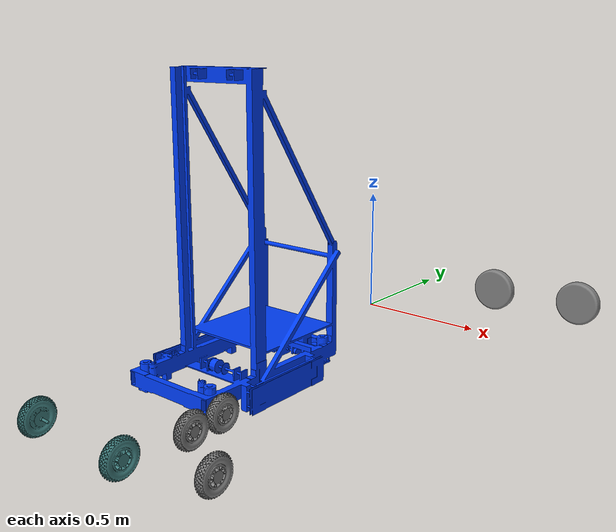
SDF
<?xml version="1.0" encoding="utf-8"?>
<sdf version="1.5">
  <model name="Tank8Wedge">
    <pose>0 0 -0.0706249999999999 0 0 0</pose>
    <plugin name="clock" filename="libgz_clock.so">
      <topic>/gazebo/frc/time</topic>
    </plugin>
    <link name="Chassis">
      <gravity>1</gravity>
      <self_collide>0</self_collide>
      <pose>0.357723289284675 0.310439789168364 0.0464936784165502 1.5707963267949 0 1.5707963267949</pose>
      <must_be_base_link>1</must_be_base_link>
      <velocity_decay>
        <linear>0</linear>
        <angular>0</angular>
      </velocity_decay>
      <inertial>
        <mass>23.7410269468256</mass>
        <pose>0 0 0 0 0 0</pose>
        <inertia>
          <ixx>2.05173000185389</ixx>
          <ixy>0.00132717564561912</ixy>
          <ixz>0.00571823264592034</ixz>
          <iyy>3.41527524343051</iyy>
          <iyz>0.0352806104243629</iyz>
          <izz>1.41790595953347</izz>
        </inertia>
      </inertial>
      <collision name="Chassis_collision">
        <pose>-0.642853807276795 -0.680583417459274 -0.958177276047857 0 0 0</pose>
        <geometry>
          <mesh>
            <scale>1 1 1</scale>
            <uri>model://Tank8Wedge/meshes/Chassis_col.STL</uri>
          </mesh>
        </geometry>
        <surface>
          <contact>
            <ode />
          </contact>
          <friction>
            <ode>
              <mu>0</mu>
              <mu2>0</mu2>
            </ode>
          </friction>
        </surface>
      </collision>
      <visual name="Chassis_visual">
        <pose>-0.642853807276795 -0.680583417459274 -0.958177276047857 0 0 0</pose>
        <material>
          <ambient>0 0.250980392156863 1 1</ambient>
          <diffuse>0 0.250980392156863 1 1</diffuse>
        </material>
        <geometry>
          <mesh>
            <scale>1 1 1</scale>
            <uri>model://Tank8Wedge/meshes/Chassis.STL</uri>
          </mesh>
        </geometry>
      </visual>
    </link>
    <link name="L1Wheel">
      <gravity>1</gravity>
      <self_collide>0</self_collide>
      <pose>0.0634370791995422 -0.0420967338462812 0.0517879126637832 1.5707963267949 0 1.5707963267949</pose>
      <must_be_base_link>0</must_be_base_link>
      <velocity_decay>
        <linear>0</linear>
        <angular>0</angular>
      </velocity_decay>
      <inertial>
        <mass>1.3226410844282</mass>
        <pose>0 0 0 0 0 0</pose>
        <inertia>
          <ixx>0.00613216984938857</ixx>
          <ixy>2.27955363979011E-19</ixy>
          <ixz>3.68883731262093E-19</ixz>
          <iyy>0.0032875121323083</iyy>
          <iyz>4.36246814135751E-20</iyz>
          <izz>0.0032875121323083</izz>
        </inertia>
      </inertial>
      <collision name="L1Wheel_collision">
        <pose>-0.29031728426215 -0.685877651706507 -0.663891065962724 0 0 0</pose>
        <geometry>
          <mesh>
            <scale>1 1 1</scale>
            <uri>model://Tank8Wedge/meshes/L1Wheel_col.STL</uri>
          </mesh>
        </geometry>
        <surface>
          <contact>
            <ode />
          </contact>
          <friction>
            <ode>
              <mu>1</mu>
              <mu2>1</mu2>
            </ode>
          </friction>
        </surface>
      </collision>
      <visual name="L1Wheel_visual">
        <pose>-0.29031728426215 -0.685877651706507 -0.663891065962724 0 0 0</pose>
        <material>
          <ambient>0.250980392156863 0.501960784313725 0.501960784313725 1</ambient>
          <diffuse>0.250980392156863 0.501960784313725 0.501960784313725 1</diffuse>
        </material>
        <geometry>
          <mesh>
            <scale>1 1 1</scale>
            <uri>model://Tank8Wedge/meshes/L1Wheel.STL</uri>
          </mesh>
        </geometry>
      </visual>
    </link>
    <joint name="Chassis-L1Wheel" type="revolute">
      <parent>Chassis</parent>
      <child>L1Wheel</child>
      <pose>0.00952500000000001 0 0 0 0 3.14159265358979</pose>
      <axis>
        <xyz>1 1.22460635382238E-16 0</xyz>
        <dynamics>
          <damping>1</damping>
          <friction>1</friction>
        </dynamics>
        <limit>
          <effort>40</effort>
        </limit>
      </axis>
    </joint>
    <link name="L2Wheel">
      <gravity>1</gravity>
      <self_collide>0</self_collide>
      <pose>0.270447079199542 -0.0420967338462811 0.0359129126637834 1.5707963267949 0 1.5707963267949</pose>
      <must_be_base_link>0</must_be_base_link>
      <velocity_decay>
        <linear>0</linear>
        <angular>0</angular>
      </velocity_decay>
      <inertial>
        <mass>1.3226410844282</mass>
        <pose>0 0 0 0 0 0</pose>
        <inertia>
          <ixx>0.00613216984938857</ixx>
          <ixy>4.15415434544847E-36</ixy>
          <ixz>4.40810381558358E-36</ixz>
          <iyy>0.0032875121323083</iyy>
          <iyz>0</iyz>
          <izz>0.0032875121323083</izz>
        </inertia>
      </inertial>
      <collision name="L2Wheel_collision">
        <pose>-0.29031728426215 -0.670002651706507 -0.870901065962724 0 0 0</pose>
        <geometry>
          <mesh>
            <scale>1 1 1</scale>
            <uri>model://Tank8Wedge/meshes/L2Wheel_col.STL</uri>
          </mesh>
        </geometry>
        <surface>
          <contact>
            <ode />
          </contact>
          <friction>
            <ode>
              <mu>1</mu>
              <mu2>1</mu2>
            </ode>
          </friction>
        </surface>
      </collision>
      <visual name="L2Wheel_visual">
        <pose>-0.29031728426215 -0.670002651706507 -0.870901065962724 0 0 0</pose>
        <material>
          <ambient>0.501960784313725 0.501960784313725 0.501960784313725 1</ambient>
          <diffuse>0.501960784313725 0.501960784313725 0.501960784313725 1</diffuse>
        </material>
        <geometry>
          <mesh>
            <scale>1 1 1</scale>
            <uri>model://Tank8Wedge/meshes/L2Wheel.STL</uri>
          </mesh>
        </geometry>
      </visual>
    </link>
    <joint name="Chassis-L2Wheel" type="revolute">
      <parent>Chassis</parent>
      <child>L2Wheel</child>
      <pose>0.00952499999999995 0 1.11022302462516E-16 0 0 3.14159265358979</pose>
      <axis>
        <xyz>1 1.22460635382238E-16 0</xyz>
        <dynamics>
          <damping>1</damping>
          <friction>1</friction>
        </dynamics>
        <limit>
          <effort>40</effort>
        </limit>
      </axis>
    </joint>
    <link name="L3Wheel">
      <gravity>1</gravity>
      <self_collide>0</self_collide>
      <pose>0.477457079199542 -0.0420967338462812 0.0359129126637834 1.5707963267949 0 1.5707963267949</pose>
      <must_be_base_link>0</must_be_base_link>
      <velocity_decay>
        <linear>0</linear>
        <angular>0</angular>
      </velocity_decay>
      <inertial>
        <mass>1.3226410844282</mass>
        <pose>0 0 0 0 0 0</pose>
        <inertia>
          <ixx>0.00613216984938857</ixx>
          <ixy>5.81519633887288E-20</ixy>
          <ixz>1.15037765748342E-19</ixz>
          <iyy>0.0032875121323083</iyy>
          <iyz>2.25932373215202E-19</iyz>
          <izz>0.0032875121323083</izz>
        </inertia>
      </inertial>
      <collision name="L3Wheel_collision">
        <pose>-0.29031728426215 -0.670002651706507 -1.07791106596272 0 0 0</pose>
        <geometry>
          <mesh>
            <scale>1 1 1</scale>
            <uri>model://Tank8Wedge/meshes/L3Wheel_col.STL</uri>
          </mesh>
        </geometry>
        <surface>
          <contact>
            <ode />
          </contact>
          <friction>
            <ode>
              <mu>1</mu>
              <mu2>1</mu2>
            </ode>
          </friction>
        </surface>
      </collision>
      <visual name="L3Wheel_visual">
        <pose>-0.29031728426215 -0.670002651706507 -1.07791106596272 0 0 0</pose>
        <material>
          <ambient>0.501960784313725 0.501960784313725 0.501960784313725 1</ambient>
          <diffuse>0.501960784313725 0.501960784313725 0.501960784313725 1</diffuse>
        </material>
        <geometry>
          <mesh>
            <scale>1 1 1</scale>
            <uri>model://Tank8Wedge/meshes/L3Wheel.STL</uri>
          </mesh>
        </geometry>
      </visual>
    </link>
    <joint name="Chassis-L3Wheel" type="revolute">
      <parent>Chassis</parent>
      <child>L3Wheel</child>
      <pose>0.00952499999999995 0 0 0 0 3.14159265358979</pose>
      <axis>
        <xyz>1 1.22460635382238E-16 0</xyz>
        <dynamics>
          <damping>1</damping>
          <friction>1</friction>
        </dynamics>
        <limit>
          <effort>40</effort>
        </limit>
      </axis>
    </joint>
    <link name="L4Wheel">
      <gravity>1</gravity>
      <self_collide>0</self_collide>
      <pose>0.684467079199542 -0.0420967338462812 0.0517879126637834 1.5707963267949 0 1.5707963267949</pose>
      <must_be_base_link>0</must_be_base_link>
      <velocity_decay>
        <linear>0</linear>
        <angular>0</angular>
      </velocity_decay>
      <inertial>
        <mass>1.3226410844282</mass>
        <pose>0 0 0 0 0 0</pose>
        <inertia>
          <ixx>0.00613216984938857</ixx>
          <ixy>6.76665428156954E-20</ixy>
          <ixz>1.47040529131632E-19</ixz>
          <iyy>0.0032875121323083</iyy>
          <iyz>2.93129243573129E-34</iyz>
          <izz>0.0032875121323083</izz>
        </inertia>
      </inertial>
      <collision name="L4Wheel_collision">
        <pose>-0.29031728426215 -0.685877651706507 -1.28492106596272 0 0 0</pose>
        <geometry>
          <mesh>
            <scale>1 1 1</scale>
            <uri>model://Tank8Wedge/meshes/L4Wheel_col.STL</uri>
          </mesh>
        </geometry>
        <surface>
          <contact>
            <ode />
          </contact>
          <friction>
            <ode>
              <mu>1</mu>
              <mu2>1</mu2>
            </ode>
          </friction>
        </surface>
      </collision>
      <visual name="L4Wheel_visual">
        <pose>-0.29031728426215 -0.685877651706507 -1.28492106596272 0 0 0</pose>
        <material>
          <ambient>0.501960784313725 0.501960784313725 0.501960784313725 1</ambient>
          <diffuse>0.501960784313725 0.501960784313725 0.501960784313725 1</diffuse>
        </material>
        <geometry>
          <mesh>
            <scale>1 1 1</scale>
            <uri>model://Tank8Wedge/meshes/L4Wheel.STL</uri>
          </mesh>
        </geometry>
      </visual>
    </link>
    <joint name="Chassis-L4Wheel" type="revolute">
      <parent>Chassis</parent>
      <child>L4Wheel</child>
      <pose>0.00952499999999995 0 0 0 0 3.14159265358979</pose>
      <axis>
        <xyz>1 1.22460635382238E-16 0</xyz>
        <dynamics>
          <damping>1</damping>
          <friction>1</friction>
        </dynamics>
        <limit>
          <effort>40</effort>
        </limit>
      </axis>
    </joint>
    <link name="R1Wheel">
      <gravity>1</gravity>
      <self_collide>0</self_collide>
      <pose>0.0634370791995424 0.663769266153719 0.0517879126637832 1.5707963267949 0 1.5707963267949</pose>
      <must_be_base_link>0</must_be_base_link>
      <velocity_decay>
        <linear>0</linear>
        <angular>0</angular>
      </velocity_decay>
      <inertial>
        <mass>1.3226410844282</mass>
        <pose>0 0 0 0 0 0</pose>
        <inertia>
          <ixx>0.00613216984938857</ixx>
          <ixy>2.81894357231355E-20</ixy>
          <ixz>3.89248792852465E-20</ixz>
          <iyy>0.0032875121323083</iyy>
          <iyz>1.25781908037285E-19</iyz>
          <izz>0.0032875121323083</izz>
        </inertia>
      </inertial>
      <collision name="R1Wheel_collision">
        <pose>-0.99618328426215 -0.685877651706507 -0.663891065962724 0 0 0</pose>
        <geometry>
          <mesh>
            <scale>1 1 1</scale>
            <uri>model://Tank8Wedge/meshes/R1Wheel_col.STL</uri>
          </mesh>
        </geometry>
        <surface>
          <contact>
            <ode />
          </contact>
          <friction>
            <ode>
              <mu>1</mu>
              <mu2>1</mu2>
            </ode>
          </friction>
        </surface>
      </collision>
      <visual name="R1Wheel_visual">
        <pose>-0.99618328426215 -0.685877651706507 -0.663891065962724 0 0 0</pose>
        <material>
          <ambient>0.250980392156863 0.501960784313725 0.501960784313725 1</ambient>
          <diffuse>0.250980392156863 0.501960784313725 0.501960784313725 1</diffuse>
        </material>
        <geometry>
          <mesh>
            <scale>1 1 1</scale>
            <uri>model://Tank8Wedge/meshes/R1Wheel.STL</uri>
          </mesh>
        </geometry>
      </visual>
    </link>
    <joint name="Chassis-R1Wheel" type="revolute">
      <parent>Chassis</parent>
      <child>R1Wheel</child>
      <pose>-0.00952500000000012 0 0 0 0 3.14159265358979</pose>
      <axis>
        <xyz>-1 -1.22460635382238E-16 0</xyz>
        <dynamics>
          <damping>1</damping>
          <friction>1</friction>
        </dynamics>
        <limit>
          <effort>40</effort>
        </limit>
      </axis>
    </joint>
    <link name="R2Wheel">
      <gravity>1</gravity>
      <self_collide>0</self_collide>
      <pose>0.270447079199542 0.663769266153719 0.0359129126637835 1.5707963267949 0 1.5707963267949</pose>
      <must_be_base_link>0</must_be_base_link>
      <velocity_decay>
        <linear>0</linear>
        <angular>0</angular>
      </velocity_decay>
      <inertial>
        <mass>1.3226410844282</mass>
        <pose>0 0 0 0 0 0</pose>
        <inertia>
          <ixx>0.00613216984938857</ixx>
          <ixy>2.12476855254537E-20</ixy>
          <ixz>5.53281905781958E-21</ixz>
          <iyy>0.0032875121323083</iyy>
          <iyz>1.86084103493666E-20</iyz>
          <izz>0.0032875121323083</izz>
        </inertia>
      </inertial>
      <collision name="R2Wheel_collision">
        <pose>-0.99618328426215 -0.670002651706507 -0.870901065962724 0 0 0</pose>
        <geometry>
          <mesh>
            <scale>1 1 1</scale>
            <uri>model://Tank8Wedge/meshes/R2Wheel_col.STL</uri>
          </mesh>
        </geometry>
        <surface>
          <contact>
            <ode />
          </contact>
          <friction>
            <ode>
              <mu>1</mu>
              <mu2>1</mu2>
            </ode>
          </friction>
        </surface>
      </collision>
      <visual name="R2Wheel_visual">
        <pose>-0.99618328426215 -0.670002651706507 -0.870901065962724 0 0 0</pose>
        <material>
          <ambient>0.501960784313725 0.501960784313725 0.501960784313725 1</ambient>
          <diffuse>0.501960784313725 0.501960784313725 0.501960784313725 1</diffuse>
        </material>
        <geometry>
          <mesh>
            <scale>1 1 1</scale>
            <uri>model://Tank8Wedge/meshes/R2Wheel.STL</uri>
          </mesh>
        </geometry>
      </visual>
    </link>
    <joint name="Chassis-R2Wheel" type="revolute">
      <parent>Chassis</parent>
      <child>R2Wheel</child>
      <pose>-0.00952500000000012 -1.11022302462516E-16 0 0 0 0</pose>
      <axis>
        <xyz>1 0 0</xyz>
        <dynamics>
          <damping>1</damping>
          <friction>1</friction>
        </dynamics>
        <limit>
          <effort>40</effort>
        </limit>
      </axis>
    </joint>
    <link name="R3Wheel">
      <gravity>1</gravity>
      <self_collide>0</self_collide>
      <pose>0.477457079199542 0.663769266153719 0.0359129126637834 1.5707963267949 0 1.5707963267949</pose>
      <must_be_base_link>0</must_be_base_link>
      <velocity_decay>
        <linear>0</linear>
        <angular>0</angular>
      </velocity_decay>
      <inertial>
        <mass>1.3226410844282</mass>
        <pose>0 0 0 0 0 0</pose>
        <inertia>
          <ixx>0.00613216984938857</ixx>
          <ixy>4.10337278341084E-24</ixy>
          <ixz>8.02649643206839E-23</ixz>
          <iyy>0.0032875121323083</iyy>
          <iyz>2.05393066559275E-20</iyz>
          <izz>0.0032875121323083</izz>
        </inertia>
      </inertial>
      <collision name="R3Wheel_collision">
        <pose>-0.99618328426215 -0.670002651706507 -1.07791106596272 0 0 0</pose>
        <geometry>
          <mesh>
            <scale>1 1 1</scale>
            <uri>model://Tank8Wedge/meshes/R3Wheel_col.STL</uri>
          </mesh>
        </geometry>
        <surface>
          <contact>
            <ode />
          </contact>
          <friction>
            <ode>
              <mu>1</mu>
              <mu2>1</mu2>
            </ode>
          </friction>
        </surface>
      </collision>
      <visual name="R3Wheel_visual">
        <pose>-0.99618328426215 -0.670002651706507 -1.07791106596272 0 0 0</pose>
        <material>
          <ambient>0.501960784313725 0.501960784313725 0.501960784313725 1</ambient>
          <diffuse>0.501960784313725 0.501960784313725 0.501960784313725 1</diffuse>
        </material>
        <geometry>
          <mesh>
            <scale>1 1 1</scale>
            <uri>model://Tank8Wedge/meshes/R3Wheel.STL</uri>
          </mesh>
        </geometry>
      </visual>
    </link>
    <joint name="Chassis-R3Wheel" type="revolute">
      <parent>Chassis</parent>
      <child>R3Wheel</child>
      <pose>-0.00952500000000012 0 0 0 0 3.14159265358979</pose>
      <axis>
        <xyz>-1 -1.22460635382238E-16 0</xyz>
        <dynamics>
          <damping>1</damping>
          <friction>1</friction>
        </dynamics>
        <limit>
          <effort>40</effort>
        </limit>
      </axis>
    </joint>
    <link name="R4Wheel">
      <gravity>1</gravity>
      <self_collide>0</self_collide>
      <pose>0.684467079199542 0.663769266153719 0.0517879126637834 1.5707963267949 0 1.5707963267949</pose>
      <must_be_base_link>0</must_be_base_link>
      <velocity_decay>
        <linear>0</linear>
        <angular>0</angular>
      </velocity_decay>
      <inertial>
        <mass>1.3226410844282</mass>
        <pose>0 0 0 0 0 0</pose>
        <inertia>
          <ixx>0.00613216984938857</ixx>
          <ixy>5.50451929690382E-21</ixy>
          <ixz>1.59694230007945E-20</ixz>
          <iyy>0.0032875121323083</iyy>
          <iyz>3.85325452101348E-20</iyz>
          <izz>0.0032875121323083</izz>
        </inertia>
      </inertial>
      <collision name="R4Wheel_collision">
        <pose>-0.99618328426215 -0.685877651706507 -1.28492106596272 0 0 0</pose>
        <geometry>
          <mesh>
            <scale>1 1 1</scale>
            <uri>model://Tank8Wedge/meshes/R4Wheel_col.STL</uri>
          </mesh>
        </geometry>
        <surface>
          <contact>
            <ode />
          </contact>
          <friction>
            <ode>
              <mu>1</mu>
              <mu2>1</mu2>
            </ode>
          </friction>
        </surface>
      </collision>
      <visual name="R4Wheel_visual">
        <pose>-0.99618328426215 -0.685877651706507 -1.28492106596272 0 0 0</pose>
        <material>
          <ambient>0.501960784313725 0.501960784313725 0.501960784313725 1</ambient>
          <diffuse>0.501960784313725 0.501960784313725 0.501960784313725 1</diffuse>
        </material>
        <geometry>
          <mesh>
            <scale>1 1 1</scale>
            <uri>model://Tank8Wedge/meshes/R4Wheel.STL</uri>
          </mesh>
        </geometry>
      </visual>
    </link>
    <joint name="Chassis-R4Wheel" type="revolute">
      <parent>Chassis</parent>
      <child>R4Wheel</child>
      <pose>-0.00952500000000012 0 0 0 0 3.14159265358979</pose>
      <axis>
        <xyz>-1 -1.22460635382238E-16 0</xyz>
        <dynamics>
          <damping>1</damping>
          <friction>1</friction>
        </dynamics>
        <limit>
          <effort>40</effort>
        </limit>
      </axis>
    </joint>
    <plugin name="Chassis-L1Wheel_motor" filename="libgz_dc_motor.so">
      <joint>Chassis-L1Wheel</joint>
      <topic>/gazebo/frc/simulator/pwm/1</topic>
      <multiplier>25</multiplier>
    </plugin>
    <plugin name="Chassis-L1Wheel_encoder" filename="libgz_encoder.so">
      <joint>Chassis-L1Wheel</joint>
      <topic>/gazebo/frc/simulator/dio/1/2</topic>
      <units>degrees</units>
    </plugin>
    <plugin name="Chassis-L2Wheel_motor" filename="libgz_dc_motor.so">
      <joint>Chassis-L2Wheel</joint>
      <topic>/gazebo/frc/simulator/pwm/1</topic>
      <multiplier>25</multiplier>
    </plugin>
    <plugin name="Chassis-L3Wheel_motor" filename="libgz_dc_motor.so">
      <joint>Chassis-L3Wheel</joint>
      <topic>/gazebo/frc/simulator/pwm/1</topic>
      <multiplier>25</multiplier>
    </plugin>
    <plugin name="Chassis-L4Wheel_motor" filename="libgz_dc_motor.so">
      <joint>Chassis-L4Wheel</joint>
      <topic>/gazebo/frc/simulator/pwm/1</topic>
      <multiplier>25</multiplier>
    </plugin>
    <plugin name="Chassis-R1Wheel_motor" filename="libgz_dc_motor.so">
      <joint>Chassis-R1Wheel</joint>
      <topic>/gazebo/frc/simulator/pwm/2</topic>
      <multiplier>25</multiplier>
    </plugin>
    <plugin name="Chassis-R1Wheel_encoder" filename="libgz_encoder.so">
      <joint>Chassis-R1Wheel</joint>
      <topic>/gazebo/frc/simulator/dio/3/4</topic>
      <units>degrees</units>
    </plugin>
    <plugin name="Chassis-R2Wheel_motor" filename="libgz_dc_motor.so">
      <joint>Chassis-R2Wheel</joint>
      <topic>/gazebo/frc/simulator/pwm/2</topic>
      <multiplier>25</multiplier>
    </plugin>
    <plugin name="Chassis-R3Wheel_motor" filename="libgz_dc_motor.so">
      <joint>Chassis-R3Wheel</joint>
      <topic>/gazebo/frc/simulator/pwm/2</topic>
      <multiplier>25</multiplier>
    </plugin>
    <plugin name="Chassis-R4Wheel_motor" filename="libgz_dc_motor.so">
      <joint>Chassis-R4Wheel</joint>
      <topic>/gazebo/frc/simulator/pwm/2</topic>
      <multiplier>25</multiplier>
    </plugin>
  </model>
</sdf>
